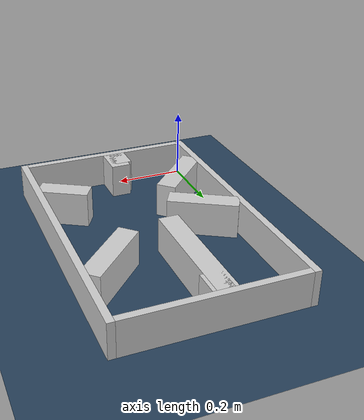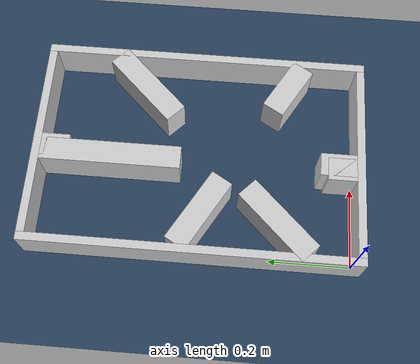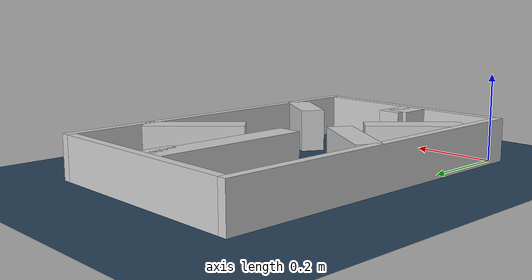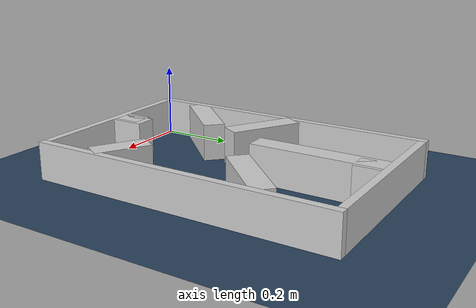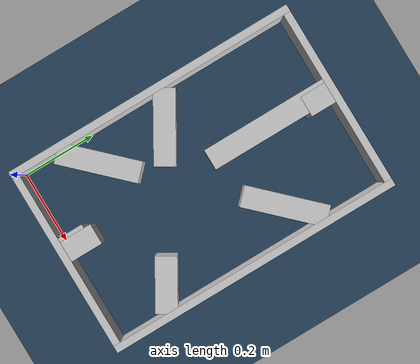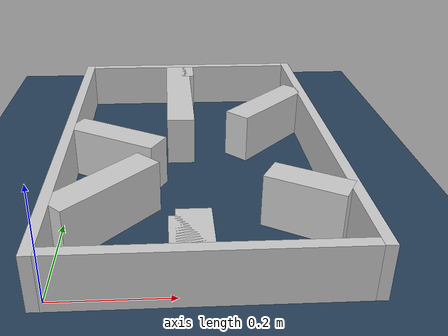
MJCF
<?xml version="1.0" ?>
<mujoco model="generated_real_template">
  <compiler angle="degree"/>
  <option timestep="0.002" integrator="implicitfast" iterations="100" cone="elliptic"/>
  <default>
    <geom density="1"/>
  </default>
  <asset>
    <texture builtin="gradient" height="3072" rgb1="0.3 0.5 0.7" rgb2="0 0 0" type="skybox" width="512"/>
    <texture builtin="checker" height="300" mark="edge" markrgb="0.8 0.8 0.8" name="groundplane" rgb1="0.2 0.3 0.4" rgb2="0.1 0.2 0.3" type="2d" width="300"/>
    <material name="groundplane" reflectance="0.2" texrepeat="5 5" texture="groundplane" texuniform="true"/>
  </asset>
  <worldbody>
    <light dir="0 0 -1" directional="true" pos="0 0 1.5"/>
    <geom name="floor" type="plane" condim="4" friction="0.5 0.005 0.001" material="groundplane" size="0 0 0.05"/>
    <body name="walls">
      <geom name="wall_boundary_left" type="box" condim="4" friction="1.0 0.005 0.0001" rgba="0.8 0.8 0.8 1" pos="-0.010000 0.387500 0.050000" euler="0 0 0.000000" size="0.010000 0.407500 0.050000"/>
      <geom name="wall_boundary_right" type="box" condim="4" friction="1.0 0.005 0.0001" rgba="0.8 0.8 0.8 1" pos="0.500000 0.387500 0.050000" euler="0 0 0.000000" size="0.010000 0.407500 0.050000"/>
      <geom name="wall_boundary_bottom" type="box" condim="4" friction="1.0 0.005 0.0001" rgba="0.8 0.8 0.8 1" pos="0.245000 -0.010000 0.050000" euler="0 0 0.000000" size="0.245000 0.010000 0.050000"/>
      <geom name="wall_boundary_top" type="box" condim="4" friction="1.0 0.005 0.0001" rgba="0.8 0.8 0.8 1" pos="0.245000 0.785000 0.050000" euler="0 0 0.000000" size="0.245000 0.010000 0.050000"/>
      <geom name="wall_inner_1_1" type="box" condim="4" friction="1.0 0.005 0.0001" rgba="0.8 0.8 0.8 1" pos="0.226016 0.044462 0.050000" euler="0 0 90.000000" size="0.044462 0.028500 0.050000"/>
      <geom name="wall_inner_1_2" type="box" condim="4" friction="1.0 0.005 0.0001" rgba="0.8 0.8 0.8 1" pos="0.226016 0.739862 0.050000" euler="0 0 90.000000" size="0.035138 0.028500 0.050000"/>
      <geom name="wall_inner_2_1" type="box" condim="4" friction="1.0 0.005 0.0001" rgba="0.8 0.8 0.8 1" pos="0.427157 0.173046 0.050000" euler="0 0 149.511598" size="0.072926 0.028500 0.050000"/>
      <geom name="wall_inner_2_2" type="box" condim="4" friction="1.0 0.005 0.0001" rgba="0.8 0.8 0.8 1" pos="0.085331 0.374304 0.050000" euler="0 0 149.511598" size="0.099023 0.028500 0.050000"/>
      <geom name="wall_inner_3_1" type="box" condim="4" friction="1.0 0.005 0.0001" rgba="0.8 0.8 0.8 1" pos="0.215497 0.035176 0.050000" euler="0 0 90.000000" size="0.035176 0.028500 0.050000"/>
      <geom name="wall_inner_3_2" type="box" condim="4" friction="1.0 0.005 0.0001" rgba="0.8 0.8 0.8 1" pos="0.215497 0.602017 0.050000" euler="0 0 90.000000" size="0.172983 0.028500 0.050000"/>
      <geom name="wall_inner_4_1" type="box" condim="4" friction="1.0 0.005 0.0001" rgba="0.8 0.8 0.8 1" pos="0.076251 0.186045 0.050000" euler="0 0 45.768579" size="0.108706 0.028500 0.050000"/>
      <geom name="wall_inner_4_2" type="box" condim="4" friction="1.0 0.005 0.0001" rgba="0.8 0.8 0.8 1" pos="0.411965 0.530889 0.050000" euler="0 0 45.768579" size="0.111264 0.028500 0.050000"/>
    </body>
  </worldbody>
</mujoco>
